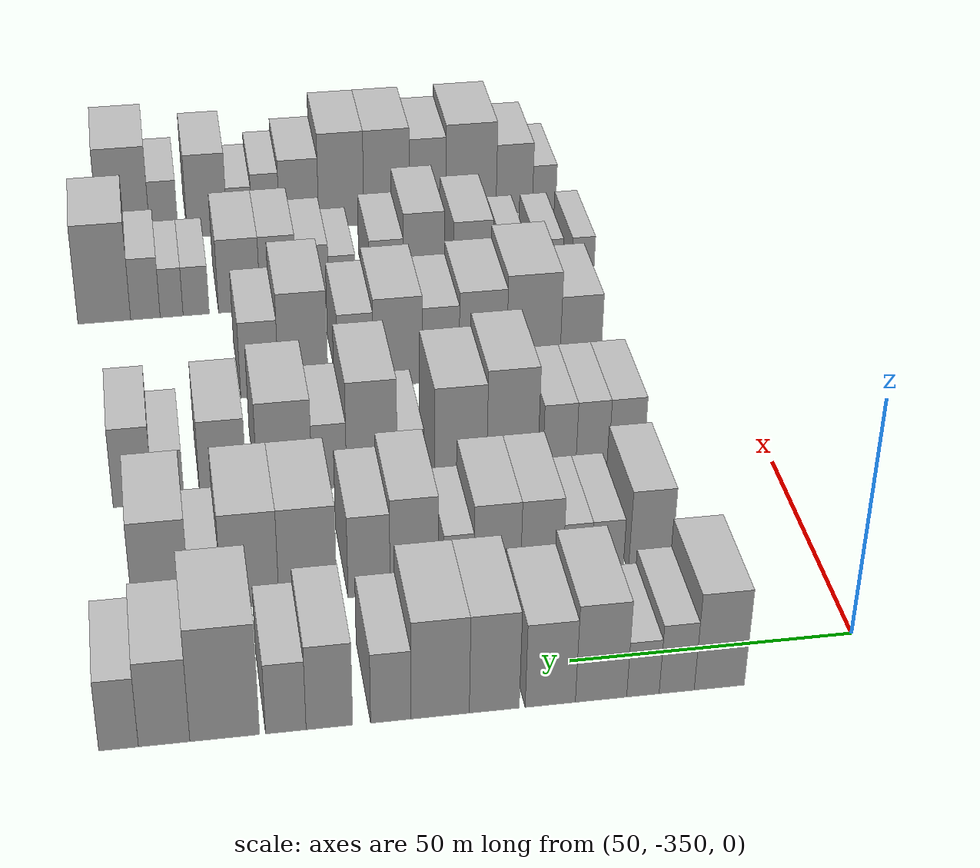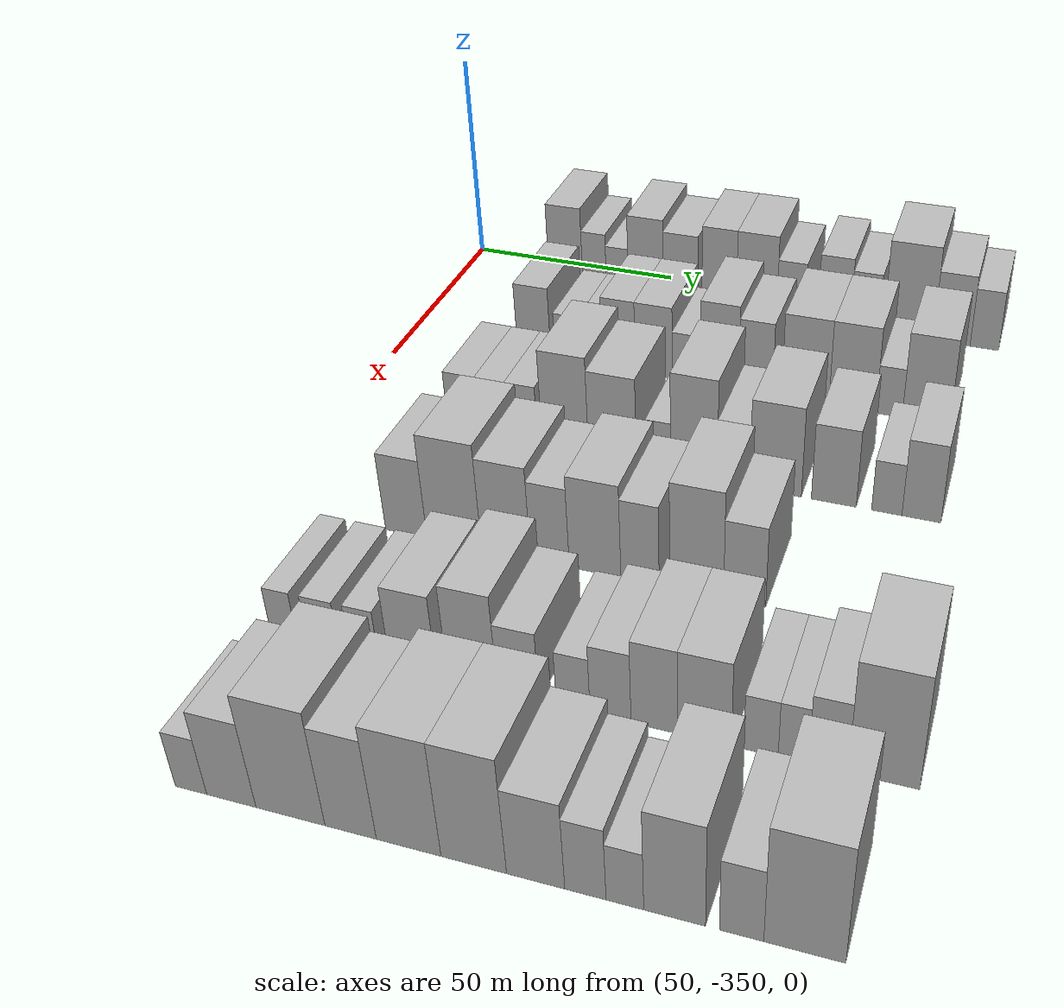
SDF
<sdf version="1.6">
 <world name="default">
  <model name="building_25">
   <static>1</static>
   <pose>50.0000 -323.5865 0 0.000000 0.000000 0.000000</pose>
   <link name="link">
    <pose>0 0 10.50 0 0 0</pose>
    <collision name="collision"><geometry><box><size>20.0000 8.6868 21.0000</size></box></geometry></collision>
    <visual name="visual">
     <cast_shadows>0</cast_shadows>
     <geometry><box><size>20.0000 8.6868 21.0000</size></box></geometry>
     <material>
      <script>
       <uri>model://HANNAS_wall/materials/scripts</uri>
       <uri>model://HANNAS_wall/materials/textures</uri>
       <name>vrc/HANNAS_wall</name>
      </script>
     </material>
    </visual>
   </link>
  </model>
  <model name="building_26">
   <static>1</static>
   <pose>50.0000 -316.2182 0 0.000000 0.000000 0.000000</pose>
   <link name="link">
    <pose>0 0 7.50 0 0 0</pose>
    <collision name="collision"><geometry><box><size>20.0000 6.0497 15.0000</size></box></geometry></collision>
    <visual name="visual">
     <cast_shadows>0</cast_shadows>
     <geometry><box><size>20.0000 6.0497 15.0000</size></box></geometry>
     <material>
      <script>
       <uri>model://HANNAS_wall/materials/scripts</uri>
       <uri>model://HANNAS_wall/materials/textures</uri>
       <name>vrc/HANNAS_wall</name>
      </script>
     </material>
    </visual>
   </link>
  </model>
  <model name="building_27">
   <static>1</static>
   <pose>50.0000 -310.4035 0 0.000000 0.000000 0.000000</pose>
   <link name="link">
    <pose>0 0 6.00 0 0 0</pose>
    <collision name="collision"><geometry><box><size>20.0000 5.5798 12.0000</size></box></geometry></collision>
    <visual name="visual">
     <cast_shadows>0</cast_shadows>
     <geometry><box><size>20.0000 5.5798 12.0000</size></box></geometry>
     <material>
      <script>
       <uri>model://HANNAS_wall/materials/scripts</uri>
       <uri>model://HANNAS_wall/materials/textures</uri>
       <name>vrc/HANNAS_wall</name>
      </script>
     </material>
    </visual>
   </link>
  </model>
  <model name="building_28">
   <static>1</static>
   <pose>50.0000 -303.2164 0 0.000000 0.000000 0.000000</pose>
   <link name="link">
    <pose>0 0 10.50 0 0 0</pose>
    <collision name="collision"><geometry><box><size>20.0000 8.7944 21.0000</size></box></geometry></collision>
    <visual name="visual">
     <cast_shadows>0</cast_shadows>
     <geometry><box><size>20.0000 8.7944 21.0000</size></box></geometry>
     <material>
      <script>
       <uri>model://HANNAS_wall/materials/scripts</uri>
       <uri>model://HANNAS_wall/materials/textures</uri>
       <name>vrc/HANNAS_wall</name>
      </script>
     </material>
    </visual>
   </link>
  </model>
  <model name="building_29">
   <static>1</static>
   <pose>50.0000 -294.5432 0 0.000000 0.000000 0.000000</pose>
   <link name="link">
    <pose>0 0 9.00 0 0 0</pose>
    <collision name="collision"><geometry><box><size>20.0000 8.5519 18.0000</size></box></geometry></collision>
    <visual name="visual">
     <cast_shadows>0</cast_shadows>
     <geometry><box><size>20.0000 8.5519 18.0000</size></box></geometry>
     <material>
      <script>
       <uri>model://HANNAS_wall/materials/scripts</uri>
       <uri>model://HANNAS_wall/materials/textures</uri>
       <name>vrc/HANNAS_wall</name>
      </script>
     </material>
    </visual>
   </link>
  </model>
  <model name="building_30">
   <static>1</static>
   <pose>50.0000 -285.0422 0 0.000000 0.000000 0.000000</pose>
   <link name="link">
    <pose>0 0 10.50 0 0 0</pose>
    <collision name="collision"><geometry><box><size>20.0000 8.4502 21.0000</size></box></geometry></collision>
    <visual name="visual">
     <cast_shadows>0</cast_shadows>
     <geometry><box><size>20.0000 8.4502 21.0000</size></box></geometry>
     <material>
      <script>
       <uri>model://HANNAS_wall/materials/scripts</uri>
       <uri>model://HANNAS_wall/materials/textures</uri>
       <name>vrc/HANNAS_wall</name>
      </script>
     </material>
    </visual>
   </link>
  </model>
  <model name="building_31">
   <static>1</static>
   <pose>50.0000 -275.9115 0 0.000000 0.000000 0.000000</pose>
   <link name="link">
    <pose>0 0 10.50 0 0 0</pose>
    <collision name="collision"><geometry><box><size>20.0000 9.8110 21.0000</size></box></geometry></collision>
    <visual name="visual">
     <cast_shadows>0</cast_shadows>
     <geometry><box><size>20.0000 9.8110 21.0000</size></box></geometry>
     <material>
      <script>
       <uri>model://HANNAS_wall/materials/scripts</uri>
       <uri>model://HANNAS_wall/materials/textures</uri>
       <name>vrc/HANNAS_wall</name>
      </script>
     </material>
    </visual>
   </link>
  </model>
  <model name="building_32">
   <static>1</static>
   <pose>50.0000 -267.6330 0 0.000000 0.000000 0.000000</pose>
   <link name="link">
    <pose>0 0 7.50 0 0 0</pose>
    <collision name="collision"><geometry><box><size>20.0000 6.7461 15.0000</size></box></geometry></collision>
    <visual name="visual">
     <cast_shadows>0</cast_shadows>
     <geometry><box><size>20.0000 6.7461 15.0000</size></box></geometry>
     <material>
      <script>
       <uri>model://HANNAS_wall/materials/scripts</uri>
       <uri>model://HANNAS_wall/materials/textures</uri>
       <name>vrc/HANNAS_wall</name>
      </script>
     </material>
    </visual>
   </link>
  </model>
  <model name="building_33">
   <static>1</static>
   <pose>50.0000 -257.3962 0 0.000000 0.000000 0.000000</pose>
   <link name="link">
    <pose>0 0 9.00 0 0 0</pose>
    <collision name="collision"><geometry><box><size>20.0000 7.7275 18.0000</size></box></geometry></collision>
    <visual name="visual">
     <cast_shadows>0</cast_shadows>
     <geometry><box><size>20.0000 7.7275 18.0000</size></box></geometry>
     <material>
      <script>
       <uri>model://HANNAS_wall/materials/scripts</uri>
       <uri>model://HANNAS_wall/materials/textures</uri>
       <name>vrc/HANNAS_wall</name>
      </script>
     </material>
    </visual>
   </link>
  </model>
  <model name="building_34">
   <static>1</static>
   <pose>50.0000 -250.1810 0 0.000000 0.000000 0.000000</pose>
   <link name="link">
    <pose>0 0 7.50 0 0 0</pose>
    <collision name="collision"><geometry><box><size>20.0000 6.7030 15.0000</size></box></geometry></collision>
    <visual name="visual">
     <cast_shadows>0</cast_shadows>
     <geometry><box><size>20.0000 6.7030 15.0000</size></box></geometry>
     <material>
      <script>
       <uri>model://HANNAS_wall/materials/scripts</uri>
       <uri>model://HANNAS_wall/materials/textures</uri>
       <name>vrc/HANNAS_wall</name>
      </script>
     </material>
    </visual>
   </link>
  </model>
  <model name="building_35">
   <static>1</static>
   <pose>50.0000 -240.1121 0 0.000000 0.000000 0.000000</pose>
   <link name="link">
    <pose>0 0 12.00 0 0 0</pose>
    <collision name="collision"><geometry><box><size>20.0000 11.4347 24.0000</size></box></geometry></collision>
    <visual name="visual">
     <cast_shadows>0</cast_shadows>
     <geometry><box><size>20.0000 11.4347 24.0000</size></box></geometry>
     <material>
      <script>
       <uri>model://HANNAS_wall/materials/scripts</uri>
       <uri>model://HANNAS_wall/materials/textures</uri>
       <name>vrc/HANNAS_wall</name>
      </script>
     </material>
    </visual>
   </link>
  </model>
  <model name="building_36">
   <static>1</static>
   <pose>50.0000 -230.1921 0 0.000000 0.000000 0.000000</pose>
   <link name="link">
    <pose>0 0 9.00 0 0 0</pose>
    <collision name="collision"><geometry><box><size>20.0000 8.4054 18.0000</size></box></geometry></collision>
    <visual name="visual">
     <cast_shadows>0</cast_shadows>
     <geometry><box><size>20.0000 8.4054 18.0000</size></box></geometry>
     <material>
      <script>
       <uri>model://HANNAS_wall/materials/scripts</uri>
       <uri>model://HANNAS_wall/materials/textures</uri>
       <name>vrc/HANNAS_wall</name>
      </script>
     </material>
    </visual>
   </link>
  </model>
  <model name="building_37">
   <static>1</static>
   <pose>50.0000 -222.7705 0 0.000000 0.000000 0.000000</pose>
   <link name="link">
    <pose>0 0 7.50 0 0 0</pose>
    <collision name="collision"><geometry><box><size>20.0000 6.4377 15.0000</size></box></geometry></collision>
    <visual name="visual">
     <cast_shadows>0</cast_shadows>
     <geometry><box><size>20.0000 6.4377 15.0000</size></box></geometry>
     <material>
      <script>
       <uri>model://HANNAS_wall/materials/scripts</uri>
       <uri>model://HANNAS_wall/materials/textures</uri>
       <name>vrc/HANNAS_wall</name>
      </script>
     </material>
    </visual>
   </link>
  </model>
  <model name="building_135">
   <static>1</static>
   <pose>82.0000 -319.1679 0 0.000000 0.000000 0.000000</pose>
   <link name="link">
    <pose>0 0 9.00 0 0 0</pose>
    <collision name="collision"><geometry><box><size>20.0000 7.9674 18.0000</size></box></geometry></collision>
    <visual name="visual">
     <cast_shadows>0</cast_shadows>
     <geometry><box><size>20.0000 7.9674 18.0000</size></box></geometry>
     <material>
      <script>
       <uri>model://HANNAS_wall/materials/scripts</uri>
       <uri>model://HANNAS_wall/materials/textures</uri>
       <name>vrc/HANNAS_wall</name>
      </script>
     </material>
    </visual>
   </link>
  </model>
  <model name="building_136">
   <static>1</static>
   <pose>82.0000 -311.2500 0 0.000000 0.000000 0.000000</pose>
   <link name="link">
    <pose>0 0 6.00 0 0 0</pose>
    <collision name="collision"><geometry><box><size>20.0000 5.8684 12.0000</size></box></geometry></collision>
    <visual name="visual">
     <cast_shadows>0</cast_shadows>
     <geometry><box><size>20.0000 5.8684 12.0000</size></box></geometry>
     <material>
      <script>
       <uri>model://HANNAS_wall/materials/scripts</uri>
       <uri>model://HANNAS_wall/materials/textures</uri>
       <name>vrc/HANNAS_wall</name>
      </script>
     </material>
    </visual>
   </link>
  </model>
  <model name="building_137">
   <static>1</static>
   <pose>82.0000 -305.6963 0 0.000000 0.000000 0.000000</pose>
   <link name="link">
    <pose>0 0 6.00 0 0 0</pose>
    <collision name="collision"><geometry><box><size>20.0000 5.2391 12.0000</size></box></geometry></collision>
    <visual name="visual">
     <cast_shadows>0</cast_shadows>
     <geometry><box><size>20.0000 5.2391 12.0000</size></box></geometry>
     <material>
      <script>
       <uri>model://HANNAS_wall/materials/scripts</uri>
       <uri>model://HANNAS_wall/materials/textures</uri>
       <name>vrc/HANNAS_wall</name>
      </script>
     </material>
    </visual>
   </link>
  </model>
  <model name="building_138">
   <static>1</static>
   <pose>82.0000 -299.2141 0 0.000000 0.000000 0.000000</pose>
   <link name="link">
    <pose>0 0 9.00 0 0 0</pose>
    <collision name="collision"><geometry><box><size>20.0000 7.7252 18.0000</size></box></geometry></collision>
    <visual name="visual">
     <cast_shadows>0</cast_shadows>
     <geometry><box><size>20.0000 7.7252 18.0000</size></box></geometry>
     <material>
      <script>
       <uri>model://HANNAS_wall/materials/scripts</uri>
       <uri>model://HANNAS_wall/materials/textures</uri>
       <name>vrc/HANNAS_wall</name>
      </script>
     </material>
    </visual>
   </link>
  </model>
  <model name="building_139">
   <static>1</static>
   <pose>82.0000 -291.1027 0 0.000000 0.000000 0.000000</pose>
   <link name="link">
    <pose>0 0 9.00 0 0 0</pose>
    <collision name="collision"><geometry><box><size>20.0000 8.4976 18.0000</size></box></geometry></collision>
    <visual name="visual">
     <cast_shadows>0</cast_shadows>
     <geometry><box><size>20.0000 8.4976 18.0000</size></box></geometry>
     <material>
      <script>
       <uri>model://HANNAS_wall/materials/scripts</uri>
       <uri>model://HANNAS_wall/materials/textures</uri>
       <name>vrc/HANNAS_wall</name>
      </script>
     </material>
    </visual>
   </link>
  </model>
  <model name="building_140">
   <static>1</static>
   <pose>82.0000 -284.1587 0 0.000000 0.000000 0.000000</pose>
   <link name="link">
    <pose>0 0 6.00 0 0 0</pose>
    <collision name="collision"><geometry><box><size>20.0000 5.3905 12.0000</size></box></geometry></collision>
    <visual name="visual">
     <cast_shadows>0</cast_shadows>
     <geometry><box><size>20.0000 5.3905 12.0000</size></box></geometry>
     <material>
      <script>
       <uri>model://HANNAS_wall/materials/scripts</uri>
       <uri>model://HANNAS_wall/materials/textures</uri>
       <name>vrc/HANNAS_wall</name>
      </script>
     </material>
    </visual>
   </link>
  </model>
  <model name="building_141">
   <static>1</static>
   <pose>82.0000 -276.1355 0 0.000000 0.000000 0.000000</pose>
   <link name="link">
    <pose>0 0 10.50 0 0 0</pose>
    <collision name="collision"><geometry><box><size>20.0000 8.6558 21.0000</size></box></geometry></collision>
    <visual name="visual">
     <cast_shadows>0</cast_shadows>
     <geometry><box><size>20.0000 8.6558 21.0000</size></box></geometry>
     <material>
      <script>
       <uri>model://HANNAS_wall/materials/scripts</uri>
       <uri>model://HANNAS_wall/materials/textures</uri>
       <name>vrc/HANNAS_wall</name>
      </script>
     </material>
    </visual>
   </link>
  </model>
  <model name="building_142">
   <static>1</static>
   <pose>82.0000 -268.0384 0 0.000000 0.000000 0.000000</pose>
   <link name="link">
    <pose>0 0 9.00 0 0 0</pose>
    <collision name="collision"><geometry><box><size>20.0000 7.5384 18.0000</size></box></geometry></collision>
    <visual name="visual">
     <cast_shadows>0</cast_shadows>
     <geometry><box><size>20.0000 7.5384 18.0000</size></box></geometry>
     <material>
      <script>
       <uri>model://HANNAS_wall/materials/scripts</uri>
       <uri>model://HANNAS_wall/materials/textures</uri>
       <name>vrc/HANNAS_wall</name>
      </script>
     </material>
    </visual>
   </link>
  </model>
  <model name="building_143">
   <static>1</static>
   <pose>82.0000 -257.1264 0 0.000000 0.000000 0.000000</pose>
   <link name="link">
    <pose>0 0 10.50 0 0 0</pose>
    <collision name="collision"><geometry><box><size>20.0000 10.2855 21.0000</size></box></geometry></collision>
    <visual name="visual">
     <cast_shadows>0</cast_shadows>
     <geometry><box><size>20.0000 10.2855 21.0000</size></box></geometry>
     <material>
      <script>
       <uri>model://HANNAS_wall/materials/scripts</uri>
       <uri>model://HANNAS_wall/materials/textures</uri>
       <name>vrc/HANNAS_wall</name>
      </script>
     </material>
    </visual>
   </link>
  </model>
  <model name="building_144">
   <static>1</static>
   <pose>82.0000 -246.9214 0 0.000000 0.000000 0.000000</pose>
   <link name="link">
    <pose>0 0 10.50 0 0 0</pose>
    <collision name="collision"><geometry><box><size>20.0000 10.1245 21.0000</size></box></geometry></collision>
    <visual name="visual">
     <cast_shadows>0</cast_shadows>
     <geometry><box><size>20.0000 10.1245 21.0000</size></box></geometry>
     <material>
      <script>
       <uri>model://HANNAS_wall/materials/scripts</uri>
       <uri>model://HANNAS_wall/materials/textures</uri>
       <name>vrc/HANNAS_wall</name>
      </script>
     </material>
    </visual>
   </link>
  </model>
  <model name="building_145">
   <static>1</static>
   <pose>82.0000 -239.0640 0 0.000000 0.000000 0.000000</pose>
   <link name="link">
    <pose>0 0 6.00 0 0 0</pose>
    <collision name="collision"><geometry><box><size>20.0000 5.5902 12.0000</size></box></geometry></collision>
    <visual name="visual">
     <cast_shadows>0</cast_shadows>
     <geometry><box><size>20.0000 5.5902 12.0000</size></box></geometry>
     <material>
      <script>
       <uri>model://HANNAS_wall/materials/scripts</uri>
       <uri>model://HANNAS_wall/materials/textures</uri>
       <name>vrc/HANNAS_wall</name>
      </script>
     </material>
    </visual>
   </link>
  </model>
  <model name="building_146">
   <static>1</static>
   <pose>82.0000 -231.2617 0 0.000000 0.000000 0.000000</pose>
   <link name="link">
    <pose>0 0 10.50 0 0 0</pose>
    <collision name="collision"><geometry><box><size>20.0000 10.0146 21.0000</size></box></geometry></collision>
    <visual name="visual">
     <cast_shadows>0</cast_shadows>
     <geometry><box><size>20.0000 10.0146 21.0000</size></box></geometry>
     <material>
      <script>
       <uri>model://HANNAS_wall/materials/scripts</uri>
       <uri>model://HANNAS_wall/materials/textures</uri>
       <name>vrc/HANNAS_wall</name>
      </script>
     </material>
    </visual>
   </link>
  </model>
  <model name="building_252">
   <static>1</static>
   <pose>114.0000 -322.0436 0 0.000000 0.000000 0.000000</pose>
   <link name="link">
    <pose>0 0 7.50 0 0 0</pose>
    <collision name="collision"><geometry><box><size>20.0000 6.9271 15.0000</size></box></geometry></collision>
    <visual name="visual">
     <cast_shadows>0</cast_shadows>
     <geometry><box><size>20.0000 6.9271 15.0000</size></box></geometry>
     <material>
      <script>
       <uri>model://HANNAS_wall/materials/scripts</uri>
       <uri>model://HANNAS_wall/materials/textures</uri>
       <name>vrc/HANNAS_wall</name>
      </script>
     </material>
    </visual>
   </link>
  </model>
  <model name="building_253">
   <static>1</static>
   <pose>114.0000 -315.3549 0 0.000000 0.000000 0.000000</pose>
   <link name="link">
    <pose>0 0 7.50 0 0 0</pose>
    <collision name="collision"><geometry><box><size>20.0000 6.4503 15.0000</size></box></geometry></collision>
    <visual name="visual">
     <cast_shadows>0</cast_shadows>
     <geometry><box><size>20.0000 6.4503 15.0000</size></box></geometry>
     <material>
      <script>
       <uri>model://HANNAS_wall/materials/scripts</uri>
       <uri>model://HANNAS_wall/materials/textures</uri>
       <name>vrc/HANNAS_wall</name>
      </script>
     </material>
    </visual>
   </link>
  </model>
  <model name="building_254">
   <static>1</static>
   <pose>114.0000 -308.8828 0 0.000000 0.000000 0.000000</pose>
   <link name="link">
    <pose>0 0 7.50 0 0 0</pose>
    <collision name="collision"><geometry><box><size>20.0000 6.4940 15.0000</size></box></geometry></collision>
    <visual name="visual">
     <cast_shadows>0</cast_shadows>
     <geometry><box><size>20.0000 6.4940 15.0000</size></box></geometry>
     <material>
      <script>
       <uri>model://HANNAS_wall/materials/scripts</uri>
       <uri>model://HANNAS_wall/materials/textures</uri>
       <name>vrc/HANNAS_wall</name>
      </script>
     </material>
    </visual>
   </link>
  </model>
  <model name="building_255">
   <static>1</static>
   <pose>114.0000 -299.6652 0 0.000000 0.000000 0.000000</pose>
   <link name="link">
    <pose>0 0 12.00 0 0 0</pose>
    <collision name="collision"><geometry><box><size>20.0000 9.9412 24.0000</size></box></geometry></collision>
    <visual name="visual">
     <cast_shadows>0</cast_shadows>
     <geometry><box><size>20.0000 9.9412 24.0000</size></box></geometry>
     <material>
      <script>
       <uri>model://HANNAS_wall/materials/scripts</uri>
       <uri>model://HANNAS_wall/materials/textures</uri>
       <name>vrc/HANNAS_wall</name>
      </script>
     </material>
    </visual>
   </link>
  </model>
  <model name="building_256">
   <static>1</static>
   <pose>114.0000 -289.6354 0 0.000000 0.000000 0.000000</pose>
   <link name="link">
    <pose>0 0 10.50 0 0 0</pose>
    <collision name="collision"><geometry><box><size>20.0000 10.1184 21.0000</size></box></geometry></collision>
    <visual name="visual">
     <cast_shadows>0</cast_shadows>
     <geometry><box><size>20.0000 10.1184 21.0000</size></box></geometry>
     <material>
      <script>
       <uri>model://HANNAS_wall/materials/scripts</uri>
       <uri>model://HANNAS_wall/materials/textures</uri>
       <name>vrc/HANNAS_wall</name>
      </script>
     </material>
    </visual>
   </link>
  </model>
  <model name="building_257">
   <static>1</static>
   <pose>114.0000 -280.0007 0 0.000000 0.000000 0.000000</pose>
   <link name="link">
    <pose>0 0 6.00 0 0 0</pose>
    <collision name="collision"><geometry><box><size>20.0000 5.1509 12.0000</size></box></geometry></collision>
    <visual name="visual">
     <cast_shadows>0</cast_shadows>
     <geometry><box><size>20.0000 5.1509 12.0000</size></box></geometry>
     <material>
      <script>
       <uri>model://HANNAS_wall/materials/scripts</uri>
       <uri>model://HANNAS_wall/materials/textures</uri>
       <name>vrc/HANNAS_wall</name>
      </script>
     </material>
    </visual>
   </link>
  </model>
  <model name="building_258">
   <static>1</static>
   <pose>114.0000 -272.6058 0 0.000000 0.000000 0.000000</pose>
   <link name="link">
    <pose>0 0 12.00 0 0 0</pose>
    <collision name="collision"><geometry><box><size>20.0000 9.6390 24.0000</size></box></geometry></collision>
    <visual name="visual">
     <cast_shadows>0</cast_shadows>
     <geometry><box><size>20.0000 9.6390 24.0000</size></box></geometry>
     <material>
      <script>
       <uri>model://HANNAS_wall/materials/scripts</uri>
       <uri>model://HANNAS_wall/materials/textures</uri>
       <name>vrc/HANNAS_wall</name>
      </script>
     </material>
    </visual>
   </link>
  </model>
  <model name="building_259">
   <static>1</static>
   <pose>114.0000 -264.4934 0 0.000000 0.000000 0.000000</pose>
   <link name="link">
    <pose>0 0 7.50 0 0 0</pose>
    <collision name="collision"><geometry><box><size>20.0000 6.5858 15.0000</size></box></geometry></collision>
    <visual name="visual">
     <cast_shadows>0</cast_shadows>
     <geometry><box><size>20.0000 6.5858 15.0000</size></box></geometry>
     <material>
      <script>
       <uri>model://HANNAS_wall/materials/scripts</uri>
       <uri>model://HANNAS_wall/materials/textures</uri>
       <name>vrc/HANNAS_wall</name>
      </script>
     </material>
    </visual>
   </link>
  </model>
  <model name="building_260">
   <static>1</static>
   <pose>114.0000 -256.0080 0 0.000000 0.000000 0.000000</pose>
   <link name="link">
    <pose>0 0 10.50 0 0 0</pose>
    <collision name="collision"><geometry><box><size>20.0000 10.3851 21.0000</size></box></geometry></collision>
    <visual name="visual">
     <cast_shadows>0</cast_shadows>
     <geometry><box><size>20.0000 10.3851 21.0000</size></box></geometry>
     <material>
      <script>
       <uri>model://HANNAS_wall/materials/scripts</uri>
       <uri>model://HANNAS_wall/materials/textures</uri>
       <name>vrc/HANNAS_wall</name>
      </script>
     </material>
    </visual>
   </link>
  </model>
  <model name="building_261">
   <static>1</static>
   <pose>114.0000 -244.4024 0 0.000000 0.000000 0.000000</pose>
   <link name="link">
    <pose>0 0 9.00 0 0 0</pose>
    <collision name="collision"><geometry><box><size>20.0000 8.8261 18.0000</size></box></geometry></collision>
    <visual name="visual">
     <cast_shadows>0</cast_shadows>
     <geometry><box><size>20.0000 8.8261 18.0000</size></box></geometry>
     <material>
      <script>
       <uri>model://HANNAS_wall/materials/scripts</uri>
       <uri>model://HANNAS_wall/materials/textures</uri>
       <name>vrc/HANNAS_wall</name>
      </script>
     </material>
    </visual>
   </link>
  </model>
  <model name="building_262">
   <static>1</static>
   <pose>114.0000 -234.0728 0 0.000000 0.000000 0.000000</pose>
   <link name="link">
    <pose>0 0 6.00 0 0 0</pose>
    <collision name="collision"><geometry><box><size>20.0000 5.8330 12.0000</size></box></geometry></collision>
    <visual name="visual">
     <cast_shadows>0</cast_shadows>
     <geometry><box><size>20.0000 5.8330 12.0000</size></box></geometry>
     <material>
      <script>
       <uri>model://HANNAS_wall/materials/scripts</uri>
       <uri>model://HANNAS_wall/materials/textures</uri>
       <name>vrc/HANNAS_wall</name>
      </script>
     </material>
    </visual>
   </link>
  </model>
  <model name="building_263">
   <static>1</static>
   <pose>114.0000 -227.4210 0 0.000000 0.000000 0.000000</pose>
   <link name="link">
    <pose>0 0 9.00 0 0 0</pose>
    <collision name="collision"><geometry><box><size>20.0000 7.4705 18.0000</size></box></geometry></collision>
    <visual name="visual">
     <cast_shadows>0</cast_shadows>
     <geometry><box><size>20.0000 7.4705 18.0000</size></box></geometry>
     <material>
      <script>
       <uri>model://HANNAS_wall/materials/scripts</uri>
       <uri>model://HANNAS_wall/materials/textures</uri>
       <name>vrc/HANNAS_wall</name>
      </script>
     </material>
    </visual>
   </link>
  </model>
  <model name="building_373">
   <static>1</static>
   <pose>146.0000 -319.6074 0 0.000000 0.000000 0.000000</pose>
   <link name="link">
    <pose>0 0 9.00 0 0 0</pose>
    <collision name="collision"><geometry><box><size>20.0000 8.5354 18.0000</size></box></geometry></collision>
    <visual name="visual">
     <cast_shadows>0</cast_shadows>
     <geometry><box><size>20.0000 8.5354 18.0000</size></box></geometry>
     <material>
      <script>
       <uri>model://HANNAS_wall/materials/scripts</uri>
       <uri>model://HANNAS_wall/materials/textures</uri>
       <name>vrc/HANNAS_wall</name>
      </script>
     </material>
    </visual>
   </link>
  </model>
  <model name="building_374">
   <static>1</static>
   <pose>146.0000 -309.7935 0 0.000000 0.000000 0.000000</pose>
   <link name="link">
    <pose>0 0 12.00 0 0 0</pose>
    <collision name="collision"><geometry><box><size>20.0000 11.0926 24.0000</size></box></geometry></collision>
    <visual name="visual">
     <cast_shadows>0</cast_shadows>
     <geometry><box><size>20.0000 11.0926 24.0000</size></box></geometry>
     <material>
      <script>
       <uri>model://HANNAS_wall/materials/scripts</uri>
       <uri>model://HANNAS_wall/materials/textures</uri>
       <name>vrc/HANNAS_wall</name>
      </script>
     </material>
    </visual>
   </link>
  </model>
  <model name="building_375">
   <static>1</static>
   <pose>146.0000 -299.3663 0 0.000000 0.000000 0.000000</pose>
   <link name="link">
    <pose>0 0 10.50 0 0 0</pose>
    <collision name="collision"><geometry><box><size>20.0000 9.7617 21.0000</size></box></geometry></collision>
    <visual name="visual">
     <cast_shadows>0</cast_shadows>
     <geometry><box><size>20.0000 9.7617 21.0000</size></box></geometry>
     <material>
      <script>
       <uri>model://HANNAS_wall/materials/scripts</uri>
       <uri>model://HANNAS_wall/materials/textures</uri>
       <name>vrc/HANNAS_wall</name>
      </script>
     </material>
    </visual>
   </link>
  </model>
  <model name="building_376">
   <static>1</static>
   <pose>146.0000 -290.7094 0 0.000000 0.000000 0.000000</pose>
   <link name="link">
    <pose>0 0 9.00 0 0 0</pose>
    <collision name="collision"><geometry><box><size>20.0000 7.5522 18.0000</size></box></geometry></collision>
    <visual name="visual">
     <cast_shadows>0</cast_shadows>
     <geometry><box><size>20.0000 7.5522 18.0000</size></box></geometry>
     <material>
      <script>
       <uri>model://HANNAS_wall/materials/scripts</uri>
       <uri>model://HANNAS_wall/materials/textures</uri>
       <name>vrc/HANNAS_wall</name>
      </script>
     </material>
    </visual>
   </link>
  </model>
  <model name="building_377">
   <static>1</static>
   <pose>146.0000 -281.9714 0 0.000000 0.000000 0.000000</pose>
   <link name="link">
    <pose>0 0 10.50 0 0 0</pose>
    <collision name="collision"><geometry><box><size>20.0000 9.9236 21.0000</size></box></geometry></collision>
    <visual name="visual">
     <cast_shadows>0</cast_shadows>
     <geometry><box><size>20.0000 9.9236 21.0000</size></box></geometry>
     <material>
      <script>
       <uri>model://HANNAS_wall/materials/scripts</uri>
       <uri>model://HANNAS_wall/materials/textures</uri>
       <name>vrc/HANNAS_wall</name>
      </script>
     </material>
    </visual>
   </link>
  </model>
  <model name="building_378">
   <static>1</static>
   <pose>146.0000 -273.3891 0 0.000000 0.000000 0.000000</pose>
   <link name="link">
    <pose>0 0 9.00 0 0 0</pose>
    <collision name="collision"><geometry><box><size>20.0000 7.2411 18.0000</size></box></geometry></collision>
    <visual name="visual">
     <cast_shadows>0</cast_shadows>
     <geometry><box><size>20.0000 7.2411 18.0000</size></box></geometry>
     <material>
      <script>
       <uri>model://HANNAS_wall/materials/scripts</uri>
       <uri>model://HANNAS_wall/materials/textures</uri>
       <name>vrc/HANNAS_wall</name>
      </script>
     </material>
    </visual>
   </link>
  </model>
  <model name="building_379">
   <static>1</static>
   <pose>146.0000 -262.7772 0 0.000000 0.000000 0.000000</pose>
   <link name="link">
    <pose>0 0 12.00 0 0 0</pose>
    <collision name="collision"><geometry><box><size>20.0000 9.9826 24.0000</size></box></geometry></collision>
    <visual name="visual">
     <cast_shadows>0</cast_shadows>
     <geometry><box><size>20.0000 9.9826 24.0000</size></box></geometry>
     <material>
      <script>
       <uri>model://HANNAS_wall/materials/scripts</uri>
       <uri>model://HANNAS_wall/materials/textures</uri>
       <name>vrc/HANNAS_wall</name>
      </script>
     </material>
    </visual>
   </link>
  </model>
  <model name="building_380">
   <static>1</static>
   <pose>146.0000 -253.9343 0 0.000000 0.000000 0.000000</pose>
   <link name="link">
    <pose>0 0 9.00 0 0 0</pose>
    <collision name="collision"><geometry><box><size>20.0000 7.7033 18.0000</size></box></geometry></collision>
    <visual name="visual">
     <cast_shadows>0</cast_shadows>
     <geometry><box><size>20.0000 7.7033 18.0000</size></box></geometry>
     <material>
      <script>
       <uri>model://HANNAS_wall/materials/scripts</uri>
       <uri>model://HANNAS_wall/materials/textures</uri>
       <name>vrc/HANNAS_wall</name>
      </script>
     </material>
    </visual>
   </link>
  </model>
  <model name="building_490">
   <static>1</static>
   <pose>178.0000 -326.7648 0 0.000000 0.000000 0.000000</pose>
   <link name="link">
    <pose>0 0 6.00 0 0 0</pose>
    <collision name="collision"><geometry><box><size>20.0000 4.9603 12.0000</size></box></geometry></collision>
    <visual name="visual">
     <cast_shadows>0</cast_shadows>
     <geometry><box><size>20.0000 4.9603 12.0000</size></box></geometry>
     <material>
      <script>
       <uri>model://HANNAS_wall/materials/scripts</uri>
       <uri>model://HANNAS_wall/materials/textures</uri>
       <name>vrc/HANNAS_wall</name>
      </script>
     </material>
    </visual>
   </link>
  </model>
  <model name="building_491">
   <static>1</static>
   <pose>178.0000 -319.3325 0 0.000000 0.000000 0.000000</pose>
   <link name="link">
    <pose>0 0 6.00 0 0 0</pose>
    <collision name="collision"><geometry><box><size>20.0000 5.9042 12.0000</size></box></geometry></collision>
    <visual name="visual">
     <cast_shadows>0</cast_shadows>
     <geometry><box><size>20.0000 5.9042 12.0000</size></box></geometry>
     <material>
      <script>
       <uri>model://HANNAS_wall/materials/scripts</uri>
       <uri>model://HANNAS_wall/materials/textures</uri>
       <name>vrc/HANNAS_wall</name>
      </script>
     </material>
    </visual>
   </link>
  </model>
  <model name="building_492">
   <static>1</static>
   <pose>178.0000 -311.6733 0 0.000000 0.000000 0.000000</pose>
   <link name="link">
    <pose>0 0 6.00 0 0 0</pose>
    <collision name="collision"><geometry><box><size>20.0000 5.4143 12.0000</size></box></geometry></collision>
    <visual name="visual">
     <cast_shadows>0</cast_shadows>
     <geometry><box><size>20.0000 5.4143 12.0000</size></box></geometry>
     <material>
      <script>
       <uri>model://HANNAS_wall/materials/scripts</uri>
       <uri>model://HANNAS_wall/materials/textures</uri>
       <name>vrc/HANNAS_wall</name>
      </script>
     </material>
    </visual>
   </link>
  </model>
  <model name="building_493">
   <static>1</static>
   <pose>178.0000 -302.6905 0 0.000000 0.000000 0.000000</pose>
   <link name="link">
    <pose>0 0 9.00 0 0 0</pose>
    <collision name="collision"><geometry><box><size>20.0000 8.5513 18.0000</size></box></geometry></collision>
    <visual name="visual">
     <cast_shadows>0</cast_shadows>
     <geometry><box><size>20.0000 8.5513 18.0000</size></box></geometry>
     <material>
      <script>
       <uri>model://HANNAS_wall/materials/scripts</uri>
       <uri>model://HANNAS_wall/materials/textures</uri>
       <name>vrc/HANNAS_wall</name>
      </script>
     </material>
    </visual>
   </link>
  </model>
  <model name="building_494">
   <static>1</static>
   <pose>178.0000 -291.9883 0 0.000000 0.000000 0.000000</pose>
   <link name="link">
    <pose>0 0 10.50 0 0 0</pose>
    <collision name="collision"><geometry><box><size>20.0000 8.8532 21.0000</size></box></geometry></collision>
    <visual name="visual">
     <cast_shadows>0</cast_shadows>
     <geometry><box><size>20.0000 8.8532 21.0000</size></box></geometry>
     <material>
      <script>
       <uri>model://HANNAS_wall/materials/scripts</uri>
       <uri>model://HANNAS_wall/materials/textures</uri>
       <name>vrc/HANNAS_wall</name>
      </script>
     </material>
    </visual>
   </link>
  </model>
  <model name="building_495">
   <static>1</static>
   <pose>178.0000 -283.8946 0 0.000000 0.000000 0.000000</pose>
   <link name="link">
    <pose>0 0 7.50 0 0 0</pose>
    <collision name="collision"><geometry><box><size>20.0000 7.3342 15.0000</size></box></geometry></collision>
    <visual name="visual">
     <cast_shadows>0</cast_shadows>
     <geometry><box><size>20.0000 7.3342 15.0000</size></box></geometry>
     <material>
      <script>
       <uri>model://HANNAS_wall/materials/scripts</uri>
       <uri>model://HANNAS_wall/materials/textures</uri>
       <name>vrc/HANNAS_wall</name>
      </script>
     </material>
    </visual>
   </link>
  </model>
  <model name="building_496">
   <static>1</static>
   <pose>178.0000 -274.3279 0 0.000000 0.000000 0.000000</pose>
   <link name="link">
    <pose>0 0 6.00 0 0 0</pose>
    <collision name="collision"><geometry><box><size>20.0000 5.7993 12.0000</size></box></geometry></collision>
    <visual name="visual">
     <cast_shadows>0</cast_shadows>
     <geometry><box><size>20.0000 5.7993 12.0000</size></box></geometry>
     <material>
      <script>
       <uri>model://HANNAS_wall/materials/scripts</uri>
       <uri>model://HANNAS_wall/materials/textures</uri>
       <name>vrc/HANNAS_wall</name>
      </script>
     </material>
    </visual>
   </link>
  </model>
  <model name="building_497">
   <static>1</static>
   <pose>178.0000 -267.9428 0 0.000000 0.000000 0.000000</pose>
   <link name="link">
    <pose>0 0 7.50 0 0 0</pose>
    <collision name="collision"><geometry><box><size>20.0000 6.9709 15.0000</size></box></geometry></collision>
    <visual name="visual">
     <cast_shadows>0</cast_shadows>
     <geometry><box><size>20.0000 6.9709 15.0000</size></box></geometry>
     <material>
      <script>
       <uri>model://HANNAS_wall/materials/scripts</uri>
       <uri>model://HANNAS_wall/materials/textures</uri>
       <name>vrc/HANNAS_wall</name>
      </script>
     </material>
    </visual>
   </link>
  </model>
  <model name="building_498">
   <static>1</static>
   <pose>178.0000 -260.5861 0 0.000000 0.000000 0.000000</pose>
   <link name="link">
    <pose>0 0 9.00 0 0 0</pose>
    <collision name="collision"><geometry><box><size>20.0000 7.7426 18.0000</size></box></geometry></collision>
    <visual name="visual">
     <cast_shadows>0</cast_shadows>
     <geometry><box><size>20.0000 7.7426 18.0000</size></box></geometry>
     <material>
      <script>
       <uri>model://HANNAS_wall/materials/scripts</uri>
       <uri>model://HANNAS_wall/materials/textures</uri>
       <name>vrc/HANNAS_wall</name>
      </script>
     </material>
    </visual>
   </link>
  </model>
  <model name="building_499">
   <static>1</static>
   <pose>178.0000 -252.2529 0 0.000000 0.000000 0.000000</pose>
   <link name="link">
    <pose>0 0 9.00 0 0 0</pose>
    <collision name="collision"><geometry><box><size>20.0000 8.9237 18.0000</size></box></geometry></collision>
    <visual name="visual">
     <cast_shadows>0</cast_shadows>
     <geometry><box><size>20.0000 8.9237 18.0000</size></box></geometry>
     <material>
      <script>
       <uri>model://HANNAS_wall/materials/scripts</uri>
       <uri>model://HANNAS_wall/materials/textures</uri>
       <name>vrc/HANNAS_wall</name>
      </script>
     </material>
    </visual>
   </link>
  </model>
  <model name="building_500">
   <static>1</static>
   <pose>178.0000 -243.0128 0 0.000000 0.000000 0.000000</pose>
   <link name="link">
    <pose>0 0 6.00 0 0 0</pose>
    <collision name="collision"><geometry><box><size>20.0000 5.5564 12.0000</size></box></geometry></collision>
    <visual name="visual">
     <cast_shadows>0</cast_shadows>
     <geometry><box><size>20.0000 5.5564 12.0000</size></box></geometry>
     <material>
      <script>
       <uri>model://HANNAS_wall/materials/scripts</uri>
       <uri>model://HANNAS_wall/materials/textures</uri>
       <name>vrc/HANNAS_wall</name>
      </script>
     </material>
    </visual>
   </link>
  </model>
  <model name="building_501">
   <static>1</static>
   <pose>178.0000 -237.8049 0 0.000000 0.000000 0.000000</pose>
   <link name="link">
    <pose>0 0 6.00 0 0 0</pose>
    <collision name="collision"><geometry><box><size>20.0000 4.8595 12.0000</size></box></geometry></collision>
    <visual name="visual">
     <cast_shadows>0</cast_shadows>
     <geometry><box><size>20.0000 4.8595 12.0000</size></box></geometry>
     <material>
      <script>
       <uri>model://HANNAS_wall/materials/scripts</uri>
       <uri>model://HANNAS_wall/materials/textures</uri>
       <name>vrc/HANNAS_wall</name>
      </script>
     </material>
    </visual>
   </link>
  </model>
  <model name="building_502">
   <static>1</static>
   <pose>178.0000 -232.2590 0 0.000000 0.000000 0.000000</pose>
   <link name="link">
    <pose>0 0 7.50 0 0 0</pose>
    <collision name="collision"><geometry><box><size>20.0000 6.2322 15.0000</size></box></geometry></collision>
    <visual name="visual">
     <cast_shadows>0</cast_shadows>
     <geometry><box><size>20.0000 6.2322 15.0000</size></box></geometry>
     <material>
      <script>
       <uri>model://HANNAS_wall/materials/scripts</uri>
       <uri>model://HANNAS_wall/materials/textures</uri>
       <name>vrc/HANNAS_wall</name>
      </script>
     </material>
    </visual>
   </link>
  </model>
  <model name="building_503">
   <static>1</static>
   <pose>178.0000 -223.5960 0 0.000000 0.000000 0.000000</pose>
   <link name="link">
    <pose>0 0 12.00 0 0 0</pose>
    <collision name="collision"><geometry><box><size>20.0000 11.0938 24.0000</size></box></geometry></collision>
    <visual name="visual">
     <cast_shadows>0</cast_shadows>
     <geometry><box><size>20.0000 11.0938 24.0000</size></box></geometry>
     <material>
      <script>
       <uri>model://HANNAS_wall/materials/scripts</uri>
       <uri>model://HANNAS_wall/materials/textures</uri>
       <name>vrc/HANNAS_wall</name>
      </script>
     </material>
    </visual>
   </link>
  </model>
  <model name="building_612">
   <static>1</static>
   <pose>210.0000 -324.5189 0 0.000000 0.000000 0.000000</pose>
   <link name="link">
    <pose>0 0 6.00 0 0 0</pose>
    <collision name="collision"><geometry><box><size>20.0000 5.4575 12.0000</size></box></geometry></collision>
    <visual name="visual">
     <cast_shadows>0</cast_shadows>
     <geometry><box><size>20.0000 5.4575 12.0000</size></box></geometry>
     <material>
      <script>
       <uri>model://HANNAS_wall/materials/scripts</uri>
       <uri>model://HANNAS_wall/materials/textures</uri>
       <name>vrc/HANNAS_wall</name>
      </script>
     </material>
    </visual>
   </link>
  </model>
  <model name="building_613">
   <static>1</static>
   <pose>210.0000 -317.5674 0 0.000000 0.000000 0.000000</pose>
   <link name="link">
    <pose>0 0 9.00 0 0 0</pose>
    <collision name="collision"><geometry><box><size>20.0000 8.4455 18.0000</size></box></geometry></collision>
    <visual name="visual">
     <cast_shadows>0</cast_shadows>
     <geometry><box><size>20.0000 8.4455 18.0000</size></box></geometry>
     <material>
      <script>
       <uri>model://HANNAS_wall/materials/scripts</uri>
       <uri>model://HANNAS_wall/materials/textures</uri>
       <name>vrc/HANNAS_wall</name>
      </script>
     </material>
    </visual>
   </link>
  </model>
  <model name="building_614">
   <static>1</static>
   <pose>210.0000 -307.5511 0 0.000000 0.000000 0.000000</pose>
   <link name="link">
    <pose>0 0 12.00 0 0 0</pose>
    <collision name="collision"><geometry><box><size>20.0000 11.5873 24.0000</size></box></geometry></collision>
    <visual name="visual">
     <cast_shadows>0</cast_shadows>
     <geometry><box><size>20.0000 11.5873 24.0000</size></box></geometry>
     <material>
      <script>
       <uri>model://HANNAS_wall/materials/scripts</uri>
       <uri>model://HANNAS_wall/materials/textures</uri>
       <name>vrc/HANNAS_wall</name>
      </script>
     </material>
    </visual>
   </link>
  </model>
  <model name="building_615">
   <static>1</static>
   <pose>210.0000 -297.5395 0 0.000000 0.000000 0.000000</pose>
   <link name="link">
    <pose>0 0 10.50 0 0 0</pose>
    <collision name="collision"><geometry><box><size>20.0000 8.4358 21.0000</size></box></geometry></collision>
    <visual name="visual">
     <cast_shadows>0</cast_shadows>
     <geometry><box><size>20.0000 8.4358 21.0000</size></box></geometry>
     <material>
      <script>
       <uri>model://HANNAS_wall/materials/scripts</uri>
       <uri>model://HANNAS_wall/materials/textures</uri>
       <name>vrc/HANNAS_wall</name>
      </script>
     </material>
    </visual>
   </link>
  </model>
  <model name="building_616">
   <static>1</static>
   <pose>210.0000 -288.1364 0 0.000000 0.000000 0.000000</pose>
   <link name="link">
    <pose>0 0 12.00 0 0 0</pose>
    <collision name="collision"><geometry><box><size>20.0000 10.3703 24.0000</size></box></geometry></collision>
    <visual name="visual">
     <cast_shadows>0</cast_shadows>
     <geometry><box><size>20.0000 10.3703 24.0000</size></box></geometry>
     <material>
      <script>
       <uri>model://HANNAS_wall/materials/scripts</uri>
       <uri>model://HANNAS_wall/materials/textures</uri>
       <name>vrc/HANNAS_wall</name>
      </script>
     </material>
    </visual>
   </link>
  </model>
  <model name="building_617">
   <static>1</static>
   <pose>210.0000 -277.8110 0 0.000000 0.000000 0.000000</pose>
   <link name="link">
    <pose>0 0 12.00 0 0 0</pose>
    <collision name="collision"><geometry><box><size>20.0000 10.2805 24.0000</size></box></geometry></collision>
    <visual name="visual">
     <cast_shadows>0</cast_shadows>
     <geometry><box><size>20.0000 10.2805 24.0000</size></box></geometry>
     <material>
      <script>
       <uri>model://HANNAS_wall/materials/scripts</uri>
       <uri>model://HANNAS_wall/materials/textures</uri>
       <name>vrc/HANNAS_wall</name>
      </script>
     </material>
    </visual>
   </link>
  </model>
  <model name="building_618">
   <static>1</static>
   <pose>210.0000 -268.2147 0 0.000000 0.000000 0.000000</pose>
   <link name="link">
    <pose>0 0 9.00 0 0 0</pose>
    <collision name="collision"><geometry><box><size>20.0000 8.9122 18.0000</size></box></geometry></collision>
    <visual name="visual">
     <cast_shadows>0</cast_shadows>
     <geometry><box><size>20.0000 8.9122 18.0000</size></box></geometry>
     <material>
      <script>
       <uri>model://HANNAS_wall/materials/scripts</uri>
       <uri>model://HANNAS_wall/materials/textures</uri>
       <name>vrc/HANNAS_wall</name>
      </script>
     </material>
    </visual>
   </link>
  </model>
  <model name="building_619">
   <static>1</static>
   <pose>210.0000 -260.6548 0 0.000000 0.000000 0.000000</pose>
   <link name="link">
    <pose>0 0 7.50 0 0 0</pose>
    <collision name="collision"><geometry><box><size>20.0000 6.2075 15.0000</size></box></geometry></collision>
    <visual name="visual">
     <cast_shadows>0</cast_shadows>
     <geometry><box><size>20.0000 6.2075 15.0000</size></box></geometry>
     <material>
      <script>
       <uri>model://HANNAS_wall/materials/scripts</uri>
       <uri>model://HANNAS_wall/materials/textures</uri>
       <name>vrc/HANNAS_wall</name>
      </script>
     </material>
    </visual>
   </link>
  </model>
  <model name="building_620">
   <static>1</static>
   <pose>210.0000 -254.7602 0 0.000000 0.000000 0.000000</pose>
   <link name="link">
    <pose>0 0 6.00 0 0 0</pose>
    <collision name="collision"><geometry><box><size>20.0000 5.5817 12.0000</size></box></geometry></collision>
    <visual name="visual">
     <cast_shadows>0</cast_shadows>
     <geometry><box><size>20.0000 5.5817 12.0000</size></box></geometry>
     <material>
      <script>
       <uri>model://HANNAS_wall/materials/scripts</uri>
       <uri>model://HANNAS_wall/materials/textures</uri>
       <name>vrc/HANNAS_wall</name>
      </script>
     </material>
    </visual>
   </link>
  </model>
  <model name="building_621">
   <static>1</static>
   <pose>210.0000 -247.4674 0 0.000000 0.000000 0.000000</pose>
   <link name="link">
    <pose>0 0 10.50 0 0 0</pose>
    <collision name="collision"><geometry><box><size>20.0000 9.0039 21.0000</size></box></geometry></collision>
    <visual name="visual">
     <cast_shadows>0</cast_shadows>
     <geometry><box><size>20.0000 9.0039 21.0000</size></box></geometry>
     <material>
      <script>
       <uri>model://HANNAS_wall/materials/scripts</uri>
       <uri>model://HANNAS_wall/materials/textures</uri>
       <name>vrc/HANNAS_wall</name>
      </script>
     </material>
    </visual>
   </link>
  </model>
  <model name="building_622">
   <static>1</static>
   <pose>210.0000 -237.8117 0 0.000000 0.000000 0.000000</pose>
   <link name="link">
    <pose>0 0 7.50 0 0 0</pose>
    <collision name="collision"><geometry><box><size>20.0000 6.3075 15.0000</size></box></geometry></collision>
    <visual name="visual">
     <cast_shadows>0</cast_shadows>
     <geometry><box><size>20.0000 6.3075 15.0000</size></box></geometry>
     <material>
      <script>
       <uri>model://HANNAS_wall/materials/scripts</uri>
       <uri>model://HANNAS_wall/materials/textures</uri>
       <name>vrc/HANNAS_wall</name>
      </script>
     </material>
    </visual>
   </link>
  </model>
  <model name="building_623">
   <static>1</static>
   <pose>210.0000 -228.9406 0 0.000000 0.000000 0.000000</pose>
   <link name="link">
    <pose>0 0 12.00 0 0 0</pose>
    <collision name="collision"><geometry><box><size>20.0000 11.4347 24.0000</size></box></geometry></collision>
    <visual name="visual">
     <cast_shadows>0</cast_shadows>
     <geometry><box><size>20.0000 11.4347 24.0000</size></box></geometry>
     <material>
      <script>
       <uri>model://HANNAS_wall/materials/scripts</uri>
       <uri>model://HANNAS_wall/materials/textures</uri>
       <name>vrc/HANNAS_wall</name>
      </script>
     </material>
    </visual>
   </link>
  </model>
 </world>
</sdf>
